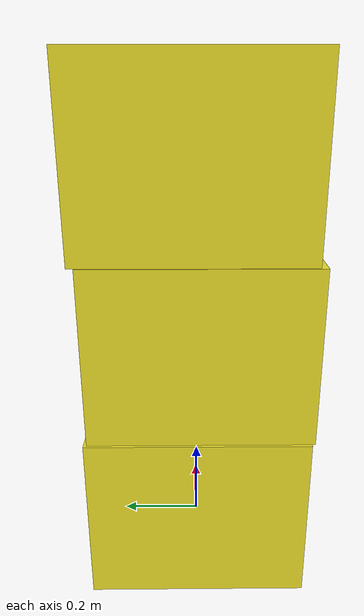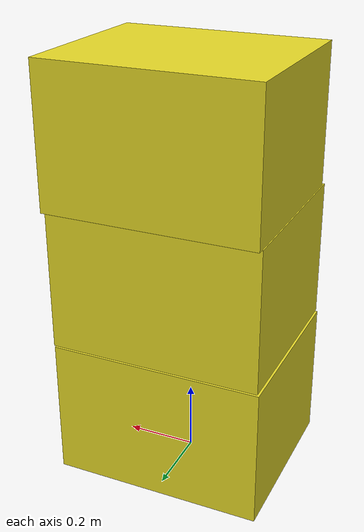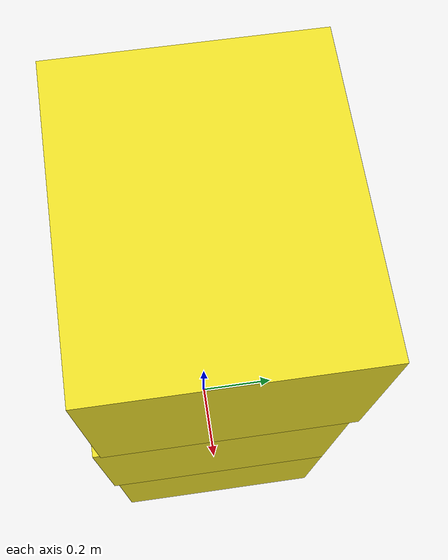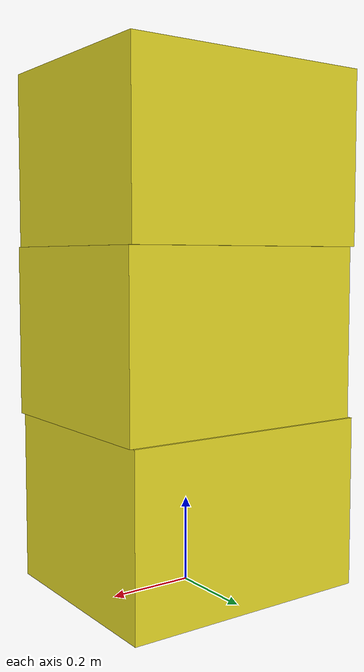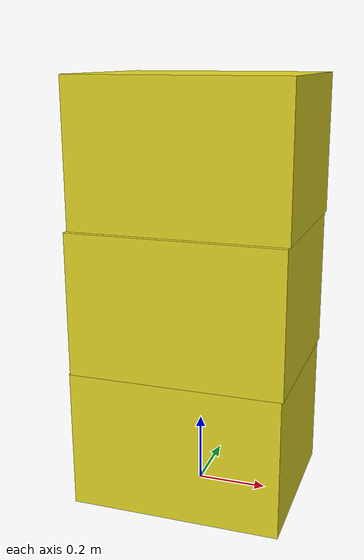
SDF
<?xml version="1.0" encoding="UTF-8"?>
<sdf version='1.4'>
   <model name="baggage_C_x3">
      <model name="baggage_C_0">
         <static>true</static>
         <link name="link">
               <collision name="collision">
                  <geometry>
                     <box>
                        <size>0.6 0.5 0.4</size>
                     </box>
                  </geometry>
               </collision>
               <visual name="visual">
                  <geometry>
                     <box>
                        <size>0.6 0.5 0.4</size>
                     </box>
                  </geometry>
                  <material>
                     <script>
                        <uri>file://media/materials/scripts/gazebo.material</uri>
                        <name>Gazebo/Yellow</name>
                     </script>
                  </material>
               </visual>
            </link>
            <pose frame=''>0 0 0.2 0 0 0</pose>
      </model>
      <model name="baggage_C_1">
         <static>true</static>
         <link name="link">
               <collision name="collision">
                  <geometry>
                     <box>
                        <size>0.6 0.5 0.4</size>
                     </box>
                  </geometry>
               </collision>
               <visual name="visual">
                  <geometry>
                     <box>
                        <size>0.6 0.5 0.4</size>
                     </box>
                  </geometry>
                  <material>
                     <script>
                        <uri>file://media/materials/scripts/gazebo.material</uri>
                        <name>Gazebo/Yellow</name>
                     </script>
                  </material>
               </visual>
            </link>
            <pose frame=''>0.0062 -0.0069 0.6 0 0 0</pose>
      </model>
      <model name="baggage_C_2">
         <static>true</static>
         <link name="link">
               <collision name="collision">
                  <geometry>
                     <box>
                        <size>0.6 0.5 0.4</size>
                     </box>
                  </geometry>
               </collision>
               <visual name="visual">
                  <geometry>
                     <box>
                        <size>0.6 0.5 0.4</size>
                     </box>
                  </geometry>
                  <material>
                     <script>
                        <uri>file://media/materials/scripts/gazebo.material</uri>
                        <name>Gazebo/Yellow</name>
                     </script>
                  </material>
               </visual>
            </link>
            <pose frame=''>0.0089 0.0083 1.0 0 0 0</pose>
      </model>
   </model>
</sdf>
